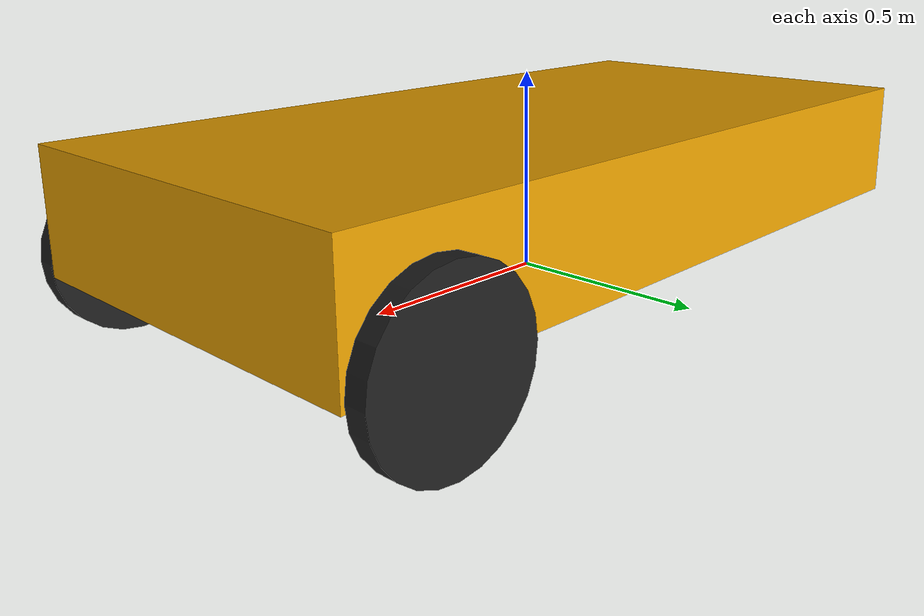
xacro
<?xml version="1.0" ?>

<robot name="healthbot" xmlns:xacro="http://www.ros.org/wiki/xacro">

  <xacro:include filename="$(find healthbot)/urdf/gazebo.xacro" />
  <xacro:include filename="$(find healthbot)/urdf/transmission.xacro" />

  <xacro:property name="wheel_radius" value="0.2"/>

  <!-- Root link -->

  <joint name="healthbot__left_wheel_hinge" type="revolute">
    <parent link="healthbot__chassis"/>
    <child link="healthbot__left_wheel"/>
    <origin xyz="0.79999 0.505   0.12499" rpy="4.40000e-04 1.57070e+00 1.57114e+00"/>
    <axis xyz="9.e-05 9.e-05 1.e+00"/>
    <limit lower="-1e+16" upper="1e+16" effort="-1.0" velocity="-1.0"/>
  </joint>

  <joint name="healthbot__right_wheel_hinge" type="revolute">
    <parent link="healthbot__chassis"/>
    <child link="healthbot__right_wheel"/>
    <origin xyz="0.8   -0.505  0.125" rpy="4.40000e-04 1.57070e+00 1.57114e+00"/>
    <axis xyz="9.e-05 9.e-05 1.e+00"/>
    <limit lower="-1e+16" upper="1e+16" effort="-1.0" velocity="-1.0"/>
  </joint>
  <link name="healthbot__chassis">
    <inertial>
      <mass value="20"/>
      <origin xyz="-0.1  0  -0.1" rpy="0 0 0"/>
      <inertia ixx="0.5" ixy="0" ixz="0" iyy="1" iyz="0" izz="0.1"/>
    </inertial>
    <collision name="healthbot__caster_collision">
      <origin xyz="-0.8    0     0.125" rpy="0 0 0"/>
      <geometry>
        <sphere radius="0.125"/>
      </geometry>
    </collision>
    <collision name="healthbot__collision">
      <origin xyz="0   0   0.25" rpy="0 0 0"/>
      <geometry>
        <box size="2 1 0.3"/>
      </geometry>
    </collision>
    <visual name="healthbot__caster_visual">
      <origin xyz="-0.8    0     0.125" rpy="0 0 0"/>
      <geometry>
        <sphere radius="0.125"/>
      </geometry>
    </visual>
    <visual name="healthbot__visual">
      <origin xyz="0   0   0.25" rpy="0 0 0"/>
      <geometry>
        <box size="2 1 0.3"/>
      </geometry>
    </visual>
  </link>

  <link name="healthbot__left_wheel">
    <inertial>
      <mass value="1"/>
      <origin xyz="0 0 0" rpy="0 0 0"/>
      <inertia ixx="1" ixy="0" ixz="0" iyy="1" iyz="0" izz="1"/>
    </inertial>
    <collision>
      <origin xyz="0   0   0.03" rpy="0 0 0"/>
      <geometry>
        <cylinder radius="${wheel_radius}" length="0.05"/>
      </geometry>
    </collision>
    <visual >
      <origin xyz="0   0   0.03" rpy="0 0 0"/>
      <geometry>
        <cylinder radius="${wheel_radius}" length="0.05"/>
      </geometry>
    </visual>
  </link>
  <link name="healthbot__right_wheel">
    <inertial>
      <mass value="1"/>
      <origin xyz="0 0 0" rpy="0 0 0"/>
      <inertia ixx="1" ixy="0" ixz="0" iyy="1" iyz="0" izz="1"/>
    </inertial>
    <collision name="healthbot__collision">
      <origin xyz="0    0   -0.03" rpy="0 0 0"/>
      <geometry>
        <cylinder radius="${wheel_radius}" length="0.05"/>
      </geometry>
    </collision>
    <visual name="healthbot__visual">
      <origin xyz="0    0   -0.03" rpy="0 0 0"/>
      <geometry>
        <cylinder radius="${wheel_radius}" length="0.05"/>
      </geometry>
    </visual>
  </link>
</robot>
